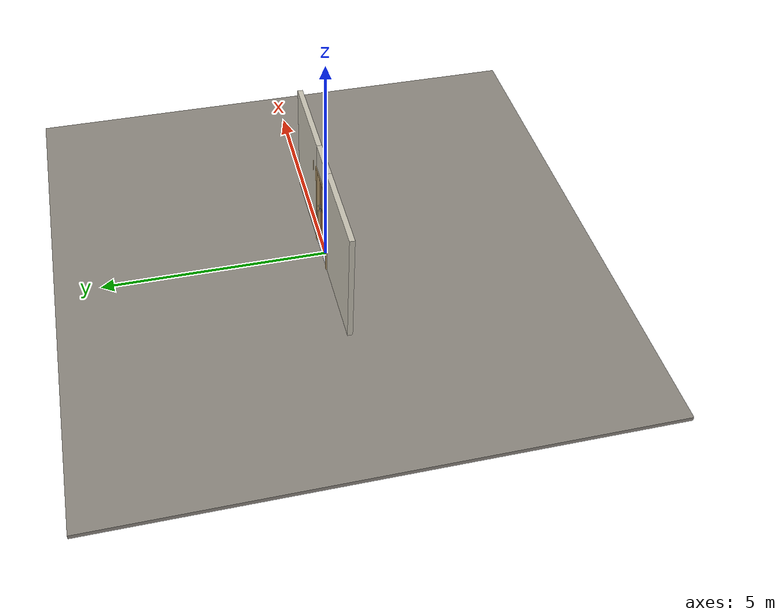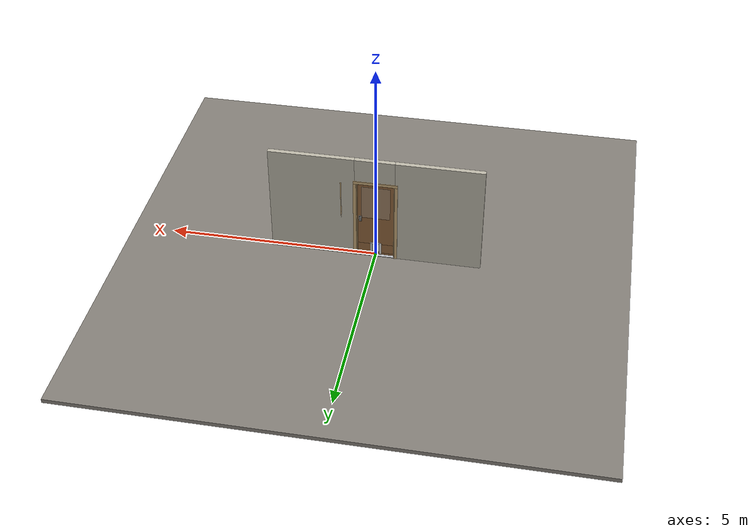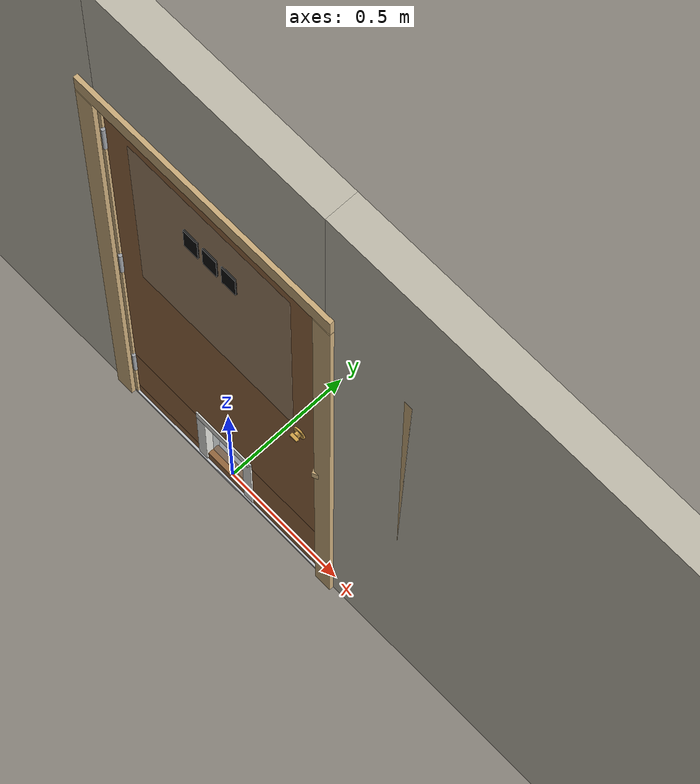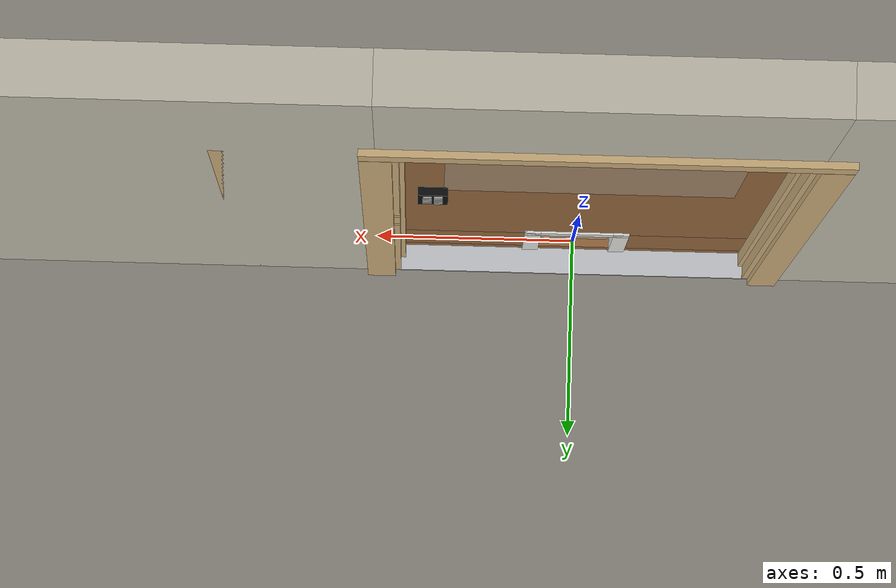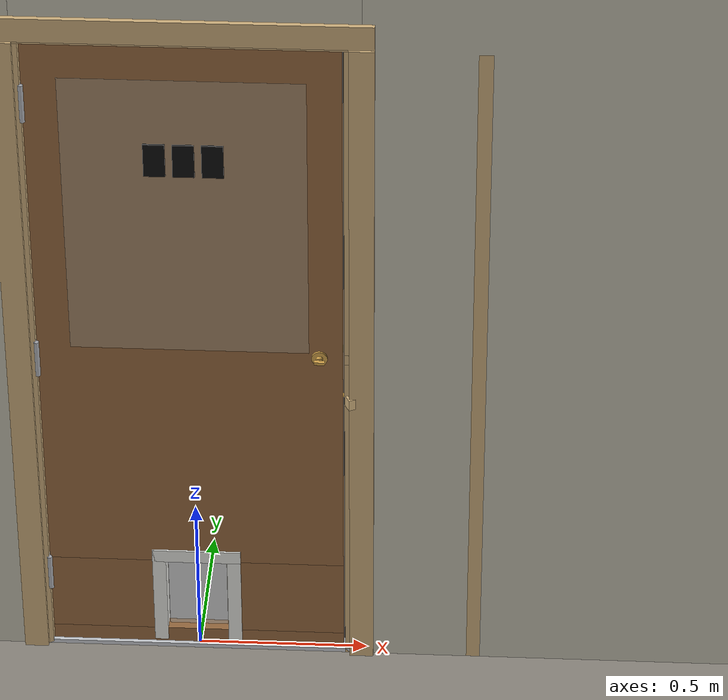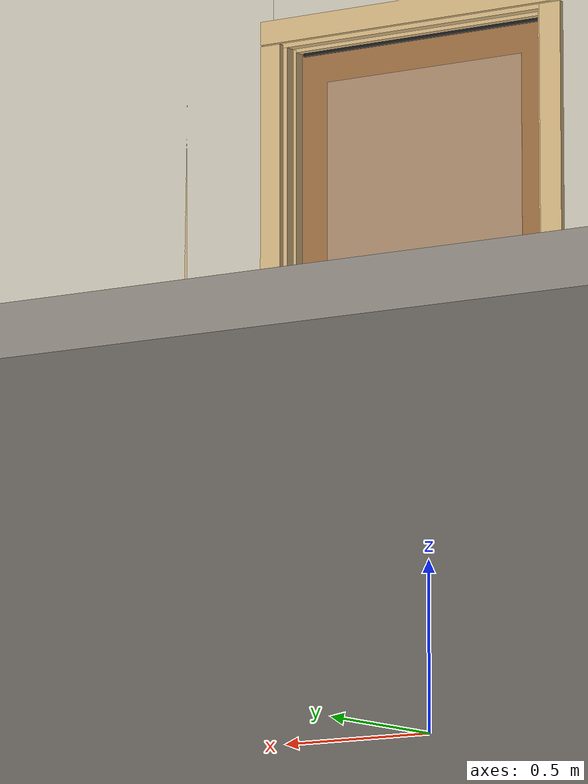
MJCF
<?xml version="1.0" ?>
<mujoco model="db0725_swing_single_full">
  <compiler angle="radian" meshdir="../../hardware" texturedir="../../textures" autolimits="true" inertiafromgeom="false"/>
  <option timestep="0.002" integrator="implicitfast" cone="elliptic" impratio="10" noslip_iterations="3">
    <flag multiccd="enable"/>
  </option>
  <size memory="16M"/>
  <default>
    <geom condim="4" solref="0.005 1" solimp="0.95 0.99 0.001"/>
    <joint solreflimit="0.005 1" solimplimit="0.95 0.99 0.001"/>
    <tendon solreflimit="0.005 1"/>
    <equality solref="0.002 1"/>
  </default>
  <visual>
    <headlight ambient="0.4 0.4 0.4" diffuse="0.7 0.7 0.7" specular="0.2 0.2 0.2"/>
    <quality shadowsize="4096"/>
    <map znear="0.01" zfar="60"/>
  </visual>
  <asset>
    <mesh name="hinge_e22b26c0c1" file="hinge_e22b26c0c1.obj"/>
    <mesh name="hinge_jamb_e1d088f8dc" file="hinge_jamb_e1d088f8dc.obj"/>
    <mesh name="house_numbers_ad0a8e8be0" file="house_numbers_ad0a8e8be0.obj"/>
    <mesh name="keypad_body_3b2d063948" file="keypad_body_3b2d063948.obj"/>
    <mesh name="thumbturn_eb5c9899a3" file="thumbturn_eb5c9899a3.obj"/>
    <material name="mat_floor" rgba="0.55 0.53 0.5 1" specular="0.2" shininess="0.15" reflectance="0"/>
    <material name="mat_wall" rgba="0.78 0.76 0.7 1" specular="0.2" shininess="0.1" reflectance="0"/>
    <material name="mat_leaf" rgba="0.6 0.42 0.25 1" specular="0.2" shininess="0.6" reflectance="0"/>
    <material name="mat_glass" rgba="0.85 0.92 0.95 0.25" specular="0.2" shininess="0.95" reflectance="0.1"/>
    <material name="mat_hinge" rgba="0.65 0.66 0.68 1" specular="0.74" shininess="0.5" reflectance="0.36"/>
    <material name="mat_op_nickel_satin" rgba="0.72 0.7 0.66 1" specular="0.8" shininess="0.65" reflectance="0.4"/>
    <material name="mat_trim" rgba="0.85 0.66 0.3 1" specular="0.8" shininess="0.75" reflectance="0.4"/>
    <material name="mat_keypad" rgba="0.05 0.05 0.05 1" specular="0.38" shininess="0.3" reflectance="0.12"/>
    <material name="mat_key" rgba="0.85 0.85 0.82 1" specular="0.2" shininess="0.5" reflectance="0"/>
    <material name="mat_bolt" rgba="0.85 0.66 0.3 1" specular="0.8" shininess="0.75" reflectance="0.4"/>
    <material name="mat_deadbolt" rgba="0.85 0.66 0.3 1" specular="0.8" shininess="0.75" reflectance="0.4"/>
    <material name="mat_frame" rgba="0.82 0.7 0.5 1" specular="0.2" shininess="0.45" reflectance="0"/>
    <material name="mat_seal" rgba="0.1 0.1 0.1 1" specular="0.2" shininess="0.1" reflectance="0"/>
    <material name="mat_threshold" rgba="0.8 0.81 0.83 1" specular="0.8" shininess="0.6" reflectance="0.4"/>
    <material name="mat_numbers" rgba="0.05 0.05 0.05 1" specular="0.38" shininess="0.3" reflectance="0.12"/>
    <material name="mat_sidelite" rgba="0.85 0.92 0.95 0.25" specular="0.2" shininess="0.95" reflectance="0.1"/>
    <material name="mat_petframe" rgba="0.92 0.92 0.9 1" specular="0.2" shininess="0.6" reflectance="0"/>
    <material name="mat_petflap" rgba="0.85 0.9 0.95 0.45" specular="0.2" shininess="0.7" reflectance="0.1"/>
    <texture name="skybox" type="skybox" builtin="gradient" rgb1="0.6 0.7 0.85" rgb2="0.9 0.92 0.95" width="256" height="256"/>
  </asset>
  <worldbody>
    <light name="sun" pos="1.5 -2.5 4" dir="-0.3 0.5 -0.8" directional="true" diffuse="0.8 0.8 0.8" specular="0.3 0.3 0.3" castshadow="true"/>
    <light name="fill" pos="-1.5 2.5 3" dir="0.3 -0.5 -0.7" directional="true" diffuse="0.35 0.35 0.4" castshadow="false"/>
    <camera name="robot_view" pos="0 -2.513687 1.734312" xyaxes="1 0 0 0 0.26963 0.962964" fovy="52"/>
    <camera name="far_view" pos="0 2.570688 1.734312" xyaxes="-1 0 0 0 -0.26963 0.962964" fovy="52"/>
    <camera name="iso" pos="1.932062 -2.106937 2.141063" xyaxes="0.741536 0.670913 0 -0.242917 0.268487 0.932151" fovy="46"/>
    <camera name="detail_handle" pos="0.508 -0.7715 1.194" xyaxes="0.97561 0.219512 0 -0.070934 0.315262 0.94635" fovy="38"/>
    <geom name="floor" type="box" size="6 6 0.05" pos="0 0 -0.05" material="mat_floor" group="0" contype="1" conaffinity="1" friction="0.8 0.005 0.0001" density="2400"/>
    <geom name="wall_left" type="box" size="1.0225 0.0575 1.35" pos="-1.4775 0.0285 1.35" material="mat_wall" group="0" contype="1" conaffinity="1" friction="0.6 0.005 0.0001" density="800"/>
    <geom name="wall_right" type="box" size="1.0075 0.0575 1.35" pos="1.4925 0.0285 1.35" material="mat_wall" group="0" contype="1" conaffinity="1" friction="0.6 0.005 0.0001" density="800"/>
    <geom name="wall_header" type="box" size="0.47 0.0575 0.303" pos="0.015 0.0285 2.397" material="mat_wall" group="0" contype="1" conaffinity="1" friction="0.6 0.005 0.0001" density="800"/>
    <geom name="hinge_0_jamb" type="mesh" mesh="hinge_jamb_e1d088f8dc" pos="-0.433 -0.029 0.267" material="mat_hinge" group="1" contype="0" conaffinity="0" density="7850"/>
    <geom name="hinge_1_jamb" type="mesh" mesh="hinge_jamb_e1d088f8dc" pos="-0.433 -0.029 1.029" material="mat_hinge" group="1" contype="0" conaffinity="0" density="7850"/>
    <geom name="hinge_2_jamb" type="mesh" mesh="hinge_jamb_e1d088f8dc" pos="-0.433 -0.029 1.861" material="mat_hinge" group="1" contype="0" conaffinity="0" density="7850"/>
    <geom name="leaf_deadbolt_strike_b" type="box" size="0.0155 0.003 0.0005" pos="0.4355 0 1.0355" quat="-0.5 -0.5 0.5 0.5" material="mat_deadbolt" group="1" contype="0" conaffinity="0" density="7800"/>
    <geom name="leaf_deadbolt_strike_l" type="box" size="0.003 0.0155 0.0005" pos="0.4355 0.0125 1.054" quat="-0.5 -0.5 0.5 0.5" material="mat_deadbolt" group="1" contype="0" conaffinity="0" density="7800"/>
    <geom name="leaf_deadbolt_strike_t" type="box" size="0.0155 0.003 0.0005" pos="0.4355 0 1.0725" quat="-0.5 -0.5 0.5 0.5" material="mat_deadbolt" group="1" contype="0" conaffinity="0" density="7800"/>
    <geom name="leaf_deadbolt_strike_r" type="box" size="0.003 0.0155 0.0005" pos="0.4355 -0.0125 1.054" quat="-0.5 -0.5 0.5 0.5" material="mat_deadbolt" group="1" contype="0" conaffinity="0" density="7800"/>
    <geom name="jamb_hinge" type="box" size="0.0095 0.0575 1.0225" pos="-0.4455 0.0285 1.0225" material="mat_frame" group="0" contype="1" conaffinity="1" friction="0.6 0.005 0.0001" density="400"/>
    <geom name="strike_914_wall_n" type="box" size="0.0245 0.039075 0.0167" pos="0.4605 0.046925 0.914" material="mat_frame" group="0" contype="1" conaffinity="1" friction="0.6 0.005 0.0001" density="400"/>
    <geom name="strike_914_wall_p" type="box" size="0.0245 0.008 0.0167" pos="0.4605 -0.01585 0.914" material="mat_frame" group="0" contype="1" conaffinity="1" friction="0.6 0.005 0.0001" density="400"/>
    <geom name="strike_914_ramp" type="box" size="0.0245 0.01649 0.0167" pos="0.465136 -0.028673 0.914" quat="0.977148 0 0 0.212558" material="mat_frame" group="0" contype="1" conaffinity="1" friction="0.12 0.005 0.0001" density="400"/>
    <geom name="strike_914_back" type="box" size="0.01615 0.00785 0.0167" pos="0.46885 0 0.914" material="mat_frame" group="0" contype="1" conaffinity="1" friction="0.6 0.005 0.0001" density="400"/>
    <geom name="strike_1054_wall_n" type="box" size="0.0245 0.03825 0.0155" pos="0.4605 0.04775 1.054" material="mat_frame" group="0" contype="1" conaffinity="1" friction="0.6 0.005 0.0001" density="400"/>
    <geom name="strike_1054_wall_p" type="box" size="0.0245 0.00975 0.0155" pos="0.4605 -0.01925 1.054" material="mat_frame" group="0" contype="1" conaffinity="1" friction="0.6 0.005 0.0001" density="400"/>
    <geom name="strike_1054_back" type="box" size="0.0098 0.0095 0.0155" pos="0.4752 0 1.054" material="mat_frame" group="0" contype="1" conaffinity="1" friction="0.6 0.005 0.0001" density="400"/>
    <geom name="jamb_strike_0" type="box" size="0.0245 0.0575 0.44865" pos="0.4605 0.0285 0.44865" material="mat_frame" group="0" contype="1" conaffinity="1" friction="0.6 0.005 0.0001" density="400"/>
    <geom name="jamb_strike_1" type="box" size="0.0245 0.0575 0.0539" pos="0.4605 0.0285 0.9846" material="mat_frame" group="0" contype="1" conaffinity="1" friction="0.6 0.005 0.0001" density="400"/>
    <geom name="jamb_strike_2" type="box" size="0.0245 0.0575 0.48775" pos="0.4605 0.0285 1.55725" material="mat_frame" group="0" contype="1" conaffinity="1" friction="0.6 0.005 0.0001" density="400"/>
    <geom name="jamb_head" type="box" size="0.47 0.0575 0.0095" pos="0.015 0.0285 2.0545" material="mat_frame" group="0" contype="1" conaffinity="1" friction="0.6 0.005 0.0001" density="400"/>
    <geom name="head_stud" type="box" size="0.47 0.0575 0.015" pos="0.015 0.0285 2.079" material="mat_wall" group="0" contype="1" conaffinity="1" friction="0.6 0.005 0.0001" density="500"/>
    <geom name="stop_hinge" type="box" size="0.0055 0.016 1.0225" pos="-0.4305 0.0385 1.0225" material="mat_frame" group="0" contype="1" conaffinity="1" friction="0.6 0.005 0.0001" density="400"/>
    <geom name="stop_strike" type="box" size="0.0055 0.016 1.0225" pos="0.4305 0.0385 1.0225" material="mat_frame" group="0" contype="1" conaffinity="1" friction="0.6 0.005 0.0001" density="400"/>
    <geom name="stop_head" type="box" size="0.436 0.016 0.0055" pos="0 0.0385 2.0395" material="mat_frame" group="0" contype="1" conaffinity="1" friction="0.6 0.005 0.0001" density="400"/>
    <geom name="seal_hinge" type="box" size="0.004 0.004 1.0225" pos="-0.433 0.026 1.0225" material="mat_seal" group="1" contype="0" conaffinity="0" density="1100"/>
    <geom name="seal_strike" type="box" size="0.004 0.004 1.0225" pos="0.433 0.026 1.0225" material="mat_seal" group="1" contype="0" conaffinity="0" density="1100"/>
    <geom name="seal_head" type="box" size="0.416 0.004 0.008" pos="0 0.026 2.033" material="mat_seal" group="1" contype="0" conaffinity="0" density="1100"/>
    <geom name="casing_l_n" type="box" size="0.035 0.008 1.032" pos="-0.485 -0.037 1.0225" material="mat_frame" group="2" contype="0" conaffinity="0" density="400"/>
    <geom name="casing_r_n" type="box" size="0.035 0.008 1.032" pos="0.485 -0.037 1.0225" material="mat_frame" group="2" contype="0" conaffinity="0" density="400"/>
    <geom name="casing_h_n" type="box" size="0.52 0.008 0.035" pos="0 -0.037 2.094" material="mat_frame" group="2" contype="0" conaffinity="0" density="400"/>
    <geom name="casing_l_p" type="box" size="0.035 0.008 1.032" pos="-0.485 0.094 1.0225" material="mat_frame" group="2" contype="0" conaffinity="0" density="400"/>
    <geom name="casing_r_p" type="box" size="0.035 0.008 1.032" pos="0.485 0.094 1.0225" material="mat_frame" group="2" contype="0" conaffinity="0" density="400"/>
    <geom name="casing_h_p" type="box" size="0.52 0.008 0.035" pos="0 0.094 2.094" material="mat_frame" group="2" contype="0" conaffinity="0" density="400"/>
    <geom name="threshold" type="box" size="0.455 0.0575 0.0065" pos="0 0.0285 0.0065" material="mat_threshold" group="0" contype="1" conaffinity="1" friction="0.5 0.005 0.0001" density="2700"/>
    <geom name="sidelite_glass" type="box" size="0.15 0.003 0.9725" pos="0.646 0 1.0225" material="mat_sidelite" group="0" contype="1" conaffinity="1" friction="0.6 0.005 0.0001" density="2500"/>
    <geom name="sidelite_frame" type="box" size="0.02 0.0575 1.0225" pos="0.816 0.0285 1.0225" material="mat_frame" group="0" contype="1" conaffinity="1" friction="0.6 0.005 0.0001" density="600"/>
    <site name="approach_point" pos="0 -1.5 0" quat="1 0 0 0" size="0.05" rgba="0.2 0.9 0.2 0.5" group="4"/>
    <site name="goal_point" pos="0 1.5 0" quat="1 0 0 0" size="0.05" rgba="0.2 0.9 0.2 0.5" group="4"/>
    <site name="door_plane_center" pos="0 0 1.0225" quat="1 0 0 0" size="0.02" rgba="0.2 0.9 0.2 0.5" group="4"/>
    <body name="leaf" pos="-0.436 0 0">
      <inertial pos="0.430998 -0.000059 0.999005" mass="46.373021" quat="-0.499195 0.501344 -0.498574 -0.500882" diaginertia="2.944019543 16.22216372 19.148942479"/>
      <joint name="leaf_hinge" type="hinge" axis="0 0 -1" pos="0.003 -0.029 0" limited="true" range="0 1.745329" solreflimit="0.02 1" damping="0.254501" frictionloss="6.629312" armature="0.02"/>
      <geom name="leaf_slab_below" type="box" size="0.432 0.022 0.0245" pos="0.435 0 0.0415" material="mat_leaf" group="0" contype="1" conaffinity="1" friction="0.3 0.005 0.0001" density="1"/>
      <geom name="leaf_slab_above" type="box" size="0.432 0.022 0.8615" pos="0.435 0 1.1795" material="mat_leaf" group="0" contype="1" conaffinity="1" friction="0.3 0.005 0.0001" density="1"/>
      <geom name="leaf_slab_left" type="box" size="0.1705 0.022 0.126" pos="0.1735 0 0.192" material="mat_leaf" group="0" contype="1" conaffinity="1" friction="0.3 0.005 0.0001" density="1"/>
      <geom name="leaf_slab_right" type="box" size="0.1705 0.022 0.126" pos="0.6965 0 0.192" material="mat_leaf" group="0" contype="1" conaffinity="1" friction="0.3 0.005 0.0001" density="1"/>
      <geom name="leaf_glass_0" type="box" size="0.33696 0.0228 0.43516" pos="0.435 0 1.50464" material="mat_glass" group="1" contype="0" conaffinity="0" density="1"/>
      <geom name="hinge_0" type="mesh" mesh="hinge_e22b26c0c1" pos="0.003 -0.029 0.267" material="mat_hinge" group="1" contype="0" conaffinity="0" density="7850"/>
      <geom name="hinge_1" type="mesh" mesh="hinge_e22b26c0c1" pos="0.003 -0.029 1.029" material="mat_hinge" group="1" contype="0" conaffinity="0" density="7850"/>
      <geom name="hinge_2" type="mesh" mesh="hinge_e22b26c0c1" pos="0.003 -0.029 1.861" material="mat_hinge" group="1" contype="0" conaffinity="0" density="7850"/>
      <geom name="leaf_keypad_body" type="mesh" mesh="keypad_body_3b2d063948" pos="0.797 0.022 1.034" quat="0 0 0.707107 0.707107" material="mat_keypad" group="0" contype="1" conaffinity="1" friction="0.6 0.005 0.0001" density="2000"/>
      <geom name="leaf_latch_bolt_faceplate" type="box" size="0.0006 0.01235 0.0267" pos="0.8664 0 0.914" material="mat_bolt" group="1" contype="0" conaffinity="0" density="8500"/>
      <geom name="leaf_deadbolt_faceplate" type="box" size="0.0006 0.014 0.0245" pos="0.8664 0 1.054" material="mat_deadbolt" group="1" contype="0" conaffinity="0" density="8500"/>
      <geom name="house_numbers" type="mesh" mesh="house_numbers_ad0a8e8be0" pos="0.435 -0.022 1.691" quat="0.707107 0.707107 0 0" material="mat_numbers" group="2" contype="0" conaffinity="0" density="1000"/>
      <geom name="pet_frame_top" type="box" size="0.13 0.028 0.02" pos="0.435 0 0.337" material="mat_petframe" group="2" contype="0" conaffinity="0" density="1200"/>
      <geom name="pet_frame_l" type="box" size="0.02 0.028 0.165" pos="0.325 0 0.192" material="mat_petframe" group="2" contype="0" conaffinity="0" density="1200"/>
      <geom name="pet_frame_r" type="box" size="0.02 0.028 0.165" pos="0.545 0 0.192" material="mat_petframe" group="2" contype="0" conaffinity="0" density="1200"/>
      <site name="leaf_edge_mid" pos="0.867 0 1.012" quat="1 0 0 0" size="0.02" rgba="0.2 0.9 0.2 0.5" group="4"/>
      <body name="leaf_handle" pos="0.797 0 0.914">
        <inertial pos="0 0 0" mass="0.037288" quat="0.5 0.5 0.5 0.5" diaginertia="0.000000671 0.000005817 0.000005817"/>
        <joint name="leaf_handle_hinge" type="hinge" axis="0 -1 0" limited="true" range="0 0.87" damping="0.141426" frictionloss="0.048" stiffness="0.5" springref="-0.5" armature="0.01"/>
        <geom name="leaf_handle_spindle" type="cylinder" size="0.006 0.021" pos="0 0 0" quat="0.707107 -0.707107 0 0" material="mat_op_nickel_satin" group="1" contype="0" conaffinity="0" density="7850"/>
      </body>
      <body name="leaf_keypad_key_1" pos="0.81 0.042 1.082">
        <inertial pos="0 0.0015 0" mass="0.001008" quat="0 0 0.707107 0.707107" diaginertia="0.000000017 0.000000034 0.00000005"/>
        <joint name="leaf_keypad_key_1_slide" type="slide" axis="0 -1 0" limited="true" range="0 0.0015" damping="14" frictionloss="0.05" stiffness="1000" springref="-0.0015" armature="0.1"/>
        <geom name="leaf_keypad_key_1_geom" type="box" size="0.01 0.0015 0.007" pos="0 0.0015 0" material="mat_key" group="0" contype="1" conaffinity="1" friction="0.6 0.005 0.0001" density="1200"/>
        <site name="leaf_keypad_key_1_press" pos="0 0.005 0" quat="1 0 0 0" size="0.008" rgba="0.2 0.9 0.2 0.5" group="4"/>
      </body>
      <body name="leaf_keypad_key_2" pos="0.784 0.042 1.082">
        <inertial pos="0 0.0015 0" mass="0.001008" quat="0 0 0.707107 0.707107" diaginertia="0.000000017 0.000000034 0.00000005"/>
        <joint name="leaf_keypad_key_2_slide" type="slide" axis="0 -1 0" limited="true" range="0 0.0015" damping="14" frictionloss="0.05" stiffness="1000" springref="-0.0015" armature="0.1"/>
        <geom name="leaf_keypad_key_2_geom" type="box" size="0.01 0.0015 0.007" pos="0 0.0015 0" material="mat_key" group="0" contype="1" conaffinity="1" friction="0.6 0.005 0.0001" density="1200"/>
        <site name="leaf_keypad_key_2_press" pos="0 0.005 0" quat="1 0 0 0" size="0.008" rgba="0.2 0.9 0.2 0.5" group="4"/>
      </body>
      <body name="leaf_keypad_key_3" pos="0.81 0.042 1.058">
        <inertial pos="0 0.0015 0" mass="0.001008" quat="0 0 0.707107 0.707107" diaginertia="0.000000017 0.000000034 0.00000005"/>
        <joint name="leaf_keypad_key_3_slide" type="slide" axis="0 -1 0" limited="true" range="0 0.0015" damping="14" frictionloss="0.05" stiffness="1000" springref="-0.0015" armature="0.1"/>
        <geom name="leaf_keypad_key_3_geom" type="box" size="0.01 0.0015 0.007" pos="0 0.0015 0" material="mat_key" group="0" contype="1" conaffinity="1" friction="0.6 0.005 0.0001" density="1200"/>
        <site name="leaf_keypad_key_3_press" pos="0 0.005 0" quat="1 0 0 0" size="0.008" rgba="0.2 0.9 0.2 0.5" group="4"/>
      </body>
      <body name="leaf_keypad_key_4" pos="0.784 0.042 1.058">
        <inertial pos="0 0.0015 0" mass="0.001008" quat="0 0 0.707107 0.707107" diaginertia="0.000000017 0.000000034 0.00000005"/>
        <joint name="leaf_keypad_key_4_slide" type="slide" axis="0 -1 0" limited="true" range="0 0.0015" damping="14" frictionloss="0.05" stiffness="1000" springref="-0.0015" armature="0.1"/>
        <geom name="leaf_keypad_key_4_geom" type="box" size="0.01 0.0015 0.007" pos="0 0.0015 0" material="mat_key" group="0" contype="1" conaffinity="1" friction="0.6 0.005 0.0001" density="1200"/>
        <site name="leaf_keypad_key_4_press" pos="0 0.005 0" quat="1 0 0 0" size="0.008" rgba="0.2 0.9 0.2 0.5" group="4"/>
      </body>
      <body name="leaf_keypad_key_5" pos="0.81 0.042 1.034">
        <inertial pos="0 0.0015 0" mass="0.001008" quat="0 0 0.707107 0.707107" diaginertia="0.000000017 0.000000034 0.00000005"/>
        <joint name="leaf_keypad_key_5_slide" type="slide" axis="0 -1 0" limited="true" range="0 0.0015" damping="14" frictionloss="0.05" stiffness="1000" springref="-0.0015" armature="0.1"/>
        <geom name="leaf_keypad_key_5_geom" type="box" size="0.01 0.0015 0.007" pos="0 0.0015 0" material="mat_key" group="0" contype="1" conaffinity="1" friction="0.6 0.005 0.0001" density="1200"/>
        <site name="leaf_keypad_key_5_press" pos="0 0.005 0" quat="1 0 0 0" size="0.008" rgba="0.2 0.9 0.2 0.5" group="4"/>
      </body>
      <body name="leaf_keypad_key_6" pos="0.784 0.042 1.034">
        <inertial pos="0 0.0015 0" mass="0.001008" quat="0 0 0.707107 0.707107" diaginertia="0.000000017 0.000000034 0.00000005"/>
        <joint name="leaf_keypad_key_6_slide" type="slide" axis="0 -1 0" limited="true" range="0 0.0015" damping="14" frictionloss="0.05" stiffness="1000" springref="-0.0015" armature="0.1"/>
        <geom name="leaf_keypad_key_6_geom" type="box" size="0.01 0.0015 0.007" pos="0 0.0015 0" material="mat_key" group="0" contype="1" conaffinity="1" friction="0.6 0.005 0.0001" density="1200"/>
        <site name="leaf_keypad_key_6_press" pos="0 0.005 0" quat="1 0 0 0" size="0.008" rgba="0.2 0.9 0.2 0.5" group="4"/>
      </body>
      <body name="leaf_keypad_key_7" pos="0.81 0.042 1.01">
        <inertial pos="0 0.0015 0" mass="0.001008" quat="0 0 0.707107 0.707107" diaginertia="0.000000017 0.000000034 0.00000005"/>
        <joint name="leaf_keypad_key_7_slide" type="slide" axis="0 -1 0" limited="true" range="0 0.0015" damping="14" frictionloss="0.05" stiffness="1000" springref="-0.0015" armature="0.1"/>
        <geom name="leaf_keypad_key_7_geom" type="box" size="0.01 0.0015 0.007" pos="0 0.0015 0" material="mat_key" group="0" contype="1" conaffinity="1" friction="0.6 0.005 0.0001" density="1200"/>
        <site name="leaf_keypad_key_7_press" pos="0 0.005 0" quat="1 0 0 0" size="0.008" rgba="0.2 0.9 0.2 0.5" group="4"/>
      </body>
      <body name="leaf_keypad_key_8" pos="0.784 0.042 1.01">
        <inertial pos="0 0.0015 0" mass="0.001008" quat="0 0 0.707107 0.707107" diaginertia="0.000000017 0.000000034 0.00000005"/>
        <joint name="leaf_keypad_key_8_slide" type="slide" axis="0 -1 0" limited="true" range="0 0.0015" damping="14" frictionloss="0.05" stiffness="1000" springref="-0.0015" armature="0.1"/>
        <geom name="leaf_keypad_key_8_geom" type="box" size="0.01 0.0015 0.007" pos="0 0.0015 0" material="mat_key" group="0" contype="1" conaffinity="1" friction="0.6 0.005 0.0001" density="1200"/>
        <site name="leaf_keypad_key_8_press" pos="0 0.005 0" quat="1 0 0 0" size="0.008" rgba="0.2 0.9 0.2 0.5" group="4"/>
      </body>
      <body name="leaf_keypad_key_9" pos="0.81 0.042 0.986">
        <inertial pos="0 0.0015 0" mass="0.001008" quat="0 0 0.707107 0.707107" diaginertia="0.000000017 0.000000034 0.00000005"/>
        <joint name="leaf_keypad_key_9_slide" type="slide" axis="0 -1 0" limited="true" range="0 0.0015" damping="14" frictionloss="0.05" stiffness="1000" springref="-0.0015" armature="0.1"/>
        <geom name="leaf_keypad_key_9_geom" type="box" size="0.01 0.0015 0.007" pos="0 0.0015 0" material="mat_key" group="0" contype="1" conaffinity="1" friction="0.6 0.005 0.0001" density="1200"/>
        <site name="leaf_keypad_key_9_press" pos="0 0.005 0" quat="1 0 0 0" size="0.008" rgba="0.2 0.9 0.2 0.5" group="4"/>
      </body>
      <body name="leaf_keypad_key_0" pos="0.784 0.042 0.986">
        <inertial pos="0 0.0015 0" mass="0.001008" quat="0 0 0.707107 0.707107" diaginertia="0.000000017 0.000000034 0.00000005"/>
        <joint name="leaf_keypad_key_0_slide" type="slide" axis="0 -1 0" limited="true" range="0 0.0015" damping="14" frictionloss="0.05" stiffness="1000" springref="-0.0015" armature="0.1"/>
        <geom name="leaf_keypad_key_0_geom" type="box" size="0.01 0.0015 0.007" pos="0 0.0015 0" material="mat_key" group="0" contype="1" conaffinity="1" friction="0.6 0.005 0.0001" density="1200"/>
        <site name="leaf_keypad_key_0_press" pos="0 0.005 0" quat="1 0 0 0" size="0.008" rgba="0.2 0.9 0.2 0.5" group="4"/>
      </body>
      <body name="leaf_latch_bolt" pos="0.867 0 0.914">
        <inertial pos="-0.00865 0 0" mass="0.041419" quat="0.92388 -0.382683 0 0" diaginertia="0.000000798 0.000005598 0.000005598"/>
        <joint name="leaf_latch_bolt_slide" type="slide" axis="-1 0 0" limited="true" range="0 0.0127" damping="2" frictionloss="0.3" stiffness="300" springref="-0.008333" armature="0.1"/>
        <geom name="leaf_latch_bolt_capsule" type="capsule" size="0.00635 0.015" pos="-0.00865 0 0" quat="0.707107 0 0.707107 0" material="mat_bolt" group="0" contype="1" conaffinity="1" friction="0.2 0.005 0.0001" density="8500"/>
      </body>
      <body name="leaf_deadbolt" pos="0.867 0 1.054">
        <inertial pos="-0.0277 0 0" mass="0.18836" quat="0 0 0.707107 0.707107" diaginertia="0.000013829 0.000052194 0.000057986"/>
        <joint name="leaf_deadbolt_slide" type="slide" axis="-1 0 0" limited="true" range="0 0.0254" damping="5" frictionloss="1.5" armature="0.1" ref="0.0254"/>
        <geom name="leaf_deadbolt_box" type="box" size="0.0277 0.008 0.0125" pos="-0.0277 0 0" material="mat_deadbolt" group="0" contype="1" conaffinity="1" friction="0.3 0.005 0.0001" density="8500"/>
      </body>
      <body name="leaf_deadbolt_thumbturn" pos="0.802 -0.022 1.054">
        <inertial pos="0 -0.012928 0" mass="0.178946" quat="0.000001 0.707107 -0.707107 -0.000001" diaginertia="0.000026045 0.000026215 0.000032438"/>
        <joint name="leaf_deadbolt_thumbturn_hinge" type="hinge" axis="0 1 0" limited="true" range="0 1.5708" damping="0.05" frictionloss="0.3" armature="0.005" ref="1.5708"/>
        <geom name="leaf_deadbolt_thumbturn_mesh" type="mesh" mesh="thumbturn_eb5c9899a3" pos="0 0 0" quat="0.499999 0.499999 0.500001 -0.500001" material="mat_deadbolt" group="0" contype="1" conaffinity="1" friction="0.6 0.005 0.0001" density="7100"/>
        <geom name="leaf_deadbolt_thumbturn_col" type="box" size="0.006 0.012 0.016" pos="0 -0.02 0" quat="0.707105 0 0.707108 0" material="mat_deadbolt" group="3" contype="1" conaffinity="1" rgba="0.8 0.3 0.3 0.25" friction="0.6 0.005 0.0001" density="7100"/>
      </body>
      <body name="pet_flap" pos="0.435 0 0.317">
        <inertial pos="0 0 -0.125" mass="0.074136" quat="-0.5 0.5 0.5 0.5" diaginertia="0.000182868 0.000361905 0.000544575"/>
        <joint name="pet_flap_hinge" type="hinge" axis="1 0 0" limited="true" range="-1.45 1.45" damping="0.02" frictionloss="0.02" armature="0.005"/>
        <geom name="pet_flap_geom" type="box" size="0.086 0.002 0.121" pos="0 0 -0.125" material="mat_petflap" group="0" contype="1" conaffinity="1" friction="0.6 0.005 0.0001" density="1250"/>
      </body>
    </body>
  </worldbody>
  <tendon>
    <fixed name="leaf_latch_bolt_coupling" limited="true" range="0 10">
      <joint joint="leaf_latch_bolt_slide" coef="1"/>
      <joint joint="leaf_handle_hinge" coef="-0.015679"/>
    </fixed>
  </tendon>
  <equality>
    <joint name="leaf_deadbolt_couple" joint1="leaf_deadbolt_slide" joint2="leaf_deadbolt_thumbturn_hinge" polycoef="0 0.01617 0 0 0" active="true"/>
  </equality>
  <contact>
    <exclude body1="leaf_deadbolt" body2="leaf_deadbolt_thumbturn"/>
  </contact>
  <sensor>
    <jointpos name="leaf_hinge_pos" joint="leaf_hinge"/>
    <jointvel name="leaf_hinge_vel" joint="leaf_hinge"/>
    <jointpos name="leaf_handle_hinge_pos" joint="leaf_handle_hinge"/>
    <jointvel name="leaf_handle_hinge_vel" joint="leaf_handle_hinge"/>
    <jointpos name="leaf_keypad_key_1_slide_pos" joint="leaf_keypad_key_1_slide"/>
    <jointvel name="leaf_keypad_key_1_slide_vel" joint="leaf_keypad_key_1_slide"/>
    <jointpos name="leaf_keypad_key_2_slide_pos" joint="leaf_keypad_key_2_slide"/>
    <jointvel name="leaf_keypad_key_2_slide_vel" joint="leaf_keypad_key_2_slide"/>
    <jointpos name="leaf_keypad_key_3_slide_pos" joint="leaf_keypad_key_3_slide"/>
    <jointvel name="leaf_keypad_key_3_slide_vel" joint="leaf_keypad_key_3_slide"/>
    <jointpos name="leaf_keypad_key_4_slide_pos" joint="leaf_keypad_key_4_slide"/>
    <jointvel name="leaf_keypad_key_4_slide_vel" joint="leaf_keypad_key_4_slide"/>
    <jointpos name="leaf_keypad_key_5_slide_pos" joint="leaf_keypad_key_5_slide"/>
    <jointvel name="leaf_keypad_key_5_slide_vel" joint="leaf_keypad_key_5_slide"/>
    <jointpos name="leaf_keypad_key_6_slide_pos" joint="leaf_keypad_key_6_slide"/>
    <jointvel name="leaf_keypad_key_6_slide_vel" joint="leaf_keypad_key_6_slide"/>
    <jointpos name="leaf_keypad_key_7_slide_pos" joint="leaf_keypad_key_7_slide"/>
    <jointvel name="leaf_keypad_key_7_slide_vel" joint="leaf_keypad_key_7_slide"/>
    <jointpos name="leaf_keypad_key_8_slide_pos" joint="leaf_keypad_key_8_slide"/>
    <jointvel name="leaf_keypad_key_8_slide_vel" joint="leaf_keypad_key_8_slide"/>
    <jointpos name="leaf_keypad_key_9_slide_pos" joint="leaf_keypad_key_9_slide"/>
    <jointvel name="leaf_keypad_key_9_slide_vel" joint="leaf_keypad_key_9_slide"/>
    <jointpos name="leaf_keypad_key_0_slide_pos" joint="leaf_keypad_key_0_slide"/>
    <jointvel name="leaf_keypad_key_0_slide_vel" joint="leaf_keypad_key_0_slide"/>
    <jointpos name="leaf_latch_bolt_slide_pos" joint="leaf_latch_bolt_slide"/>
    <jointvel name="leaf_latch_bolt_slide_vel" joint="leaf_latch_bolt_slide"/>
    <jointpos name="leaf_deadbolt_slide_pos" joint="leaf_deadbolt_slide"/>
    <jointvel name="leaf_deadbolt_slide_vel" joint="leaf_deadbolt_slide"/>
    <jointpos name="leaf_deadbolt_thumbturn_hinge_pos" joint="leaf_deadbolt_thumbturn_hinge"/>
    <jointvel name="leaf_deadbolt_thumbturn_hinge_vel" joint="leaf_deadbolt_thumbturn_hinge"/>
    <jointpos name="pet_flap_hinge_pos" joint="pet_flap_hinge"/>
    <jointvel name="pet_flap_hinge_vel" joint="pet_flap_hinge"/>
  </sensor>
</mujoco>
